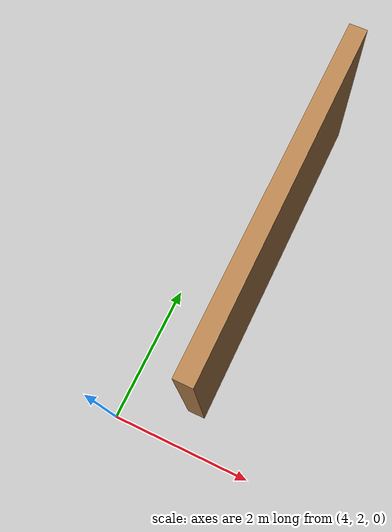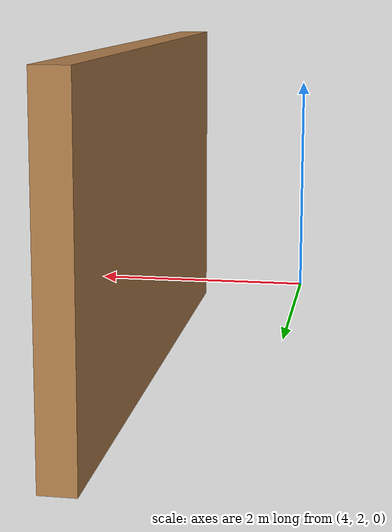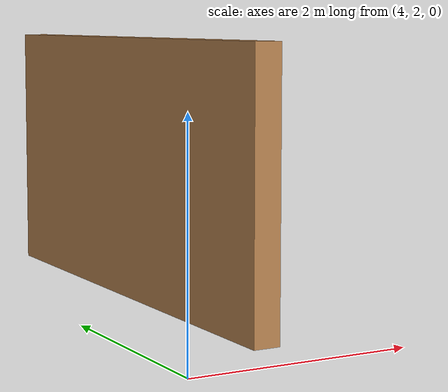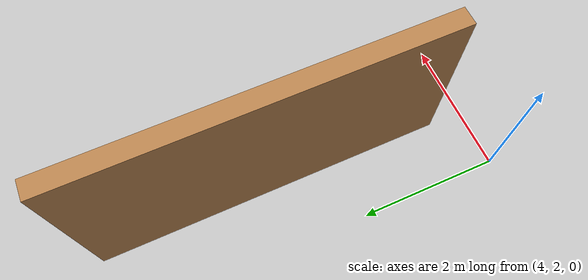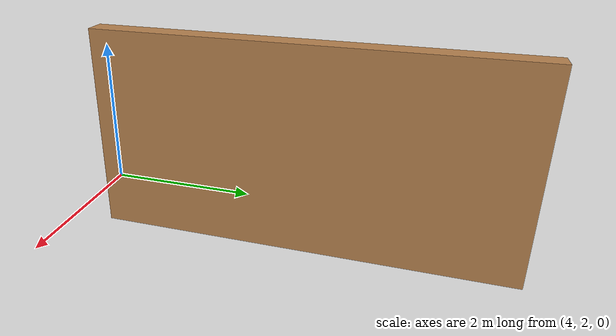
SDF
<?xml version='1.0'?>
<sdf version='1.6'>
  <model name='my_wall'>
    <link name='Wall_88'>
      <pose frame=''>5 5 1.25 0 0 1.57 </pose>
      <self_collide>0</self_collide>
      <kinematic>0</kinematic>
      <visual name='Wall_88_Visual'>
        <pose frame=''>0 0 0 0 -0 0</pose>
        <geometry>
          <box>
            <size> 5 0.25 2.5</size>
          </box>
        </geometry>
        <material>
          <script>
            <uri>file://media/materials/scripts/gazebo.material</uri>
            <name>Gazebo/Wood</name>
          </script>
          <ambient>1 1 1 1</ambient>
          <diffuse>1 1 1 1</diffuse>
          <specular>0.2 0.2 0.2 1</specular>
          <emissive>0 0 0 1</emissive>
        </material>
        <cast_shadows>1</cast_shadows>
        <transparency>0</transparency>
      </visual>
      <collision name='Wall_88_Collision'>
        <laser_retro>0</laser_retro>
        <max_contacts>10</max_contacts>
        <pose frame=''>0 0 0 0 -0 0</pose>
        <geometry>
          <box>
            <size> 5 0.25 2.5</size>
          </box>
        </geometry>
        <surface>
          <friction>
            <ode>
              <mu>1</mu>
              <mu2>1</mu2>
              <fdir1>0 0 0</fdir1>
              <slip1>0</slip1>
              <slip2>0</slip2>
            </ode>
            <torsional>
              <coefficient>1</coefficient>
              <patch_radius>0</patch_radius>
              <surface_radius>0</surface_radius>
              <use_patch_radius>1</use_patch_radius>
              <ode>
                <slip>0</slip>
              </ode>
            </torsional>
          </friction>
          <bounce>
            <restitution_coefficient>0</restitution_coefficient>
            <threshold>1e+06</threshold>
          </bounce>
          <contact>
            <collide_without_contact>0</collide_without_contact>
            <collide_without_contact_bitmask>1</collide_without_contact_bitmask>
            <collide_bitmask>1</collide_bitmask>
            <ode>
              <soft_cfm>0</soft_cfm>
              <soft_erp>0.2</soft_erp>
              <kp>1e+13</kp>
              <kd>1</kd>
              <max_vel>0.01</max_vel>
              <min_depth>0</min_depth>
            </ode>
            <bullet>
              <split_impulse>1</split_impulse>
              <split_impulse_penetration_threshold>-0.01</split_impulse_penetration_threshold>
              <soft_cfm>0</soft_cfm>
              <soft_erp>0.2</soft_erp>
              <kp>1e+13</kp>
              <kd>1</kd>
            </bullet>
          </contact>
        </surface>
      </collision>
    </link>
  <static>true</static>
  </model>
</sdf>
>
